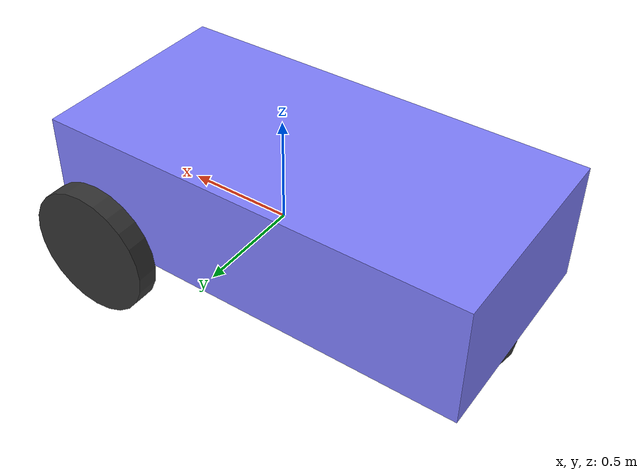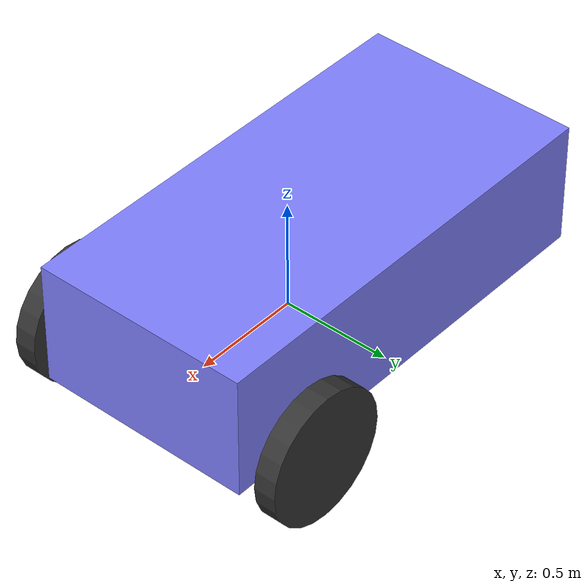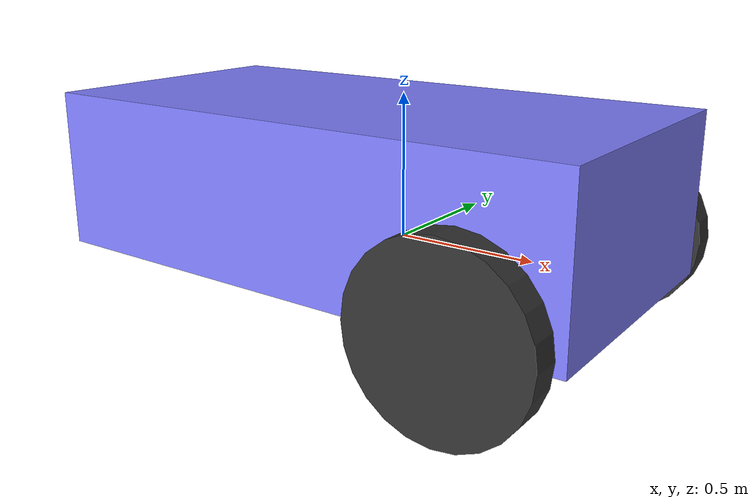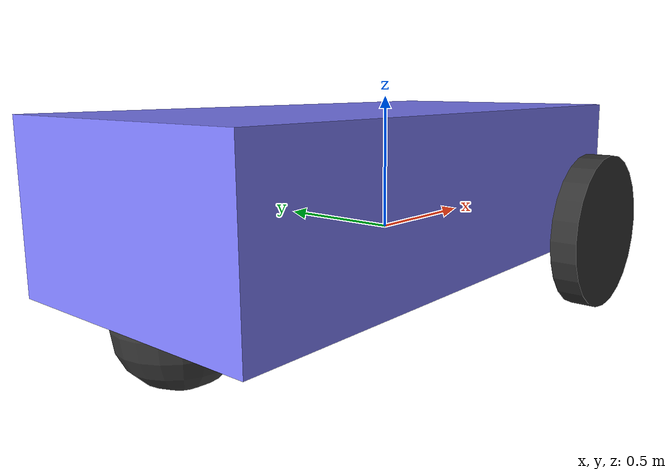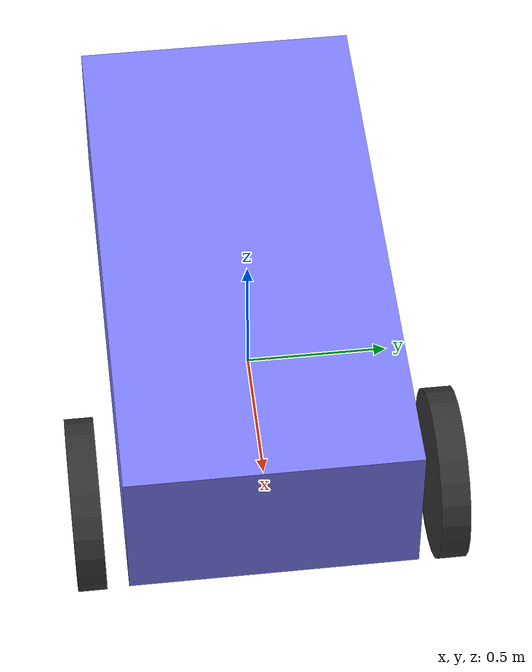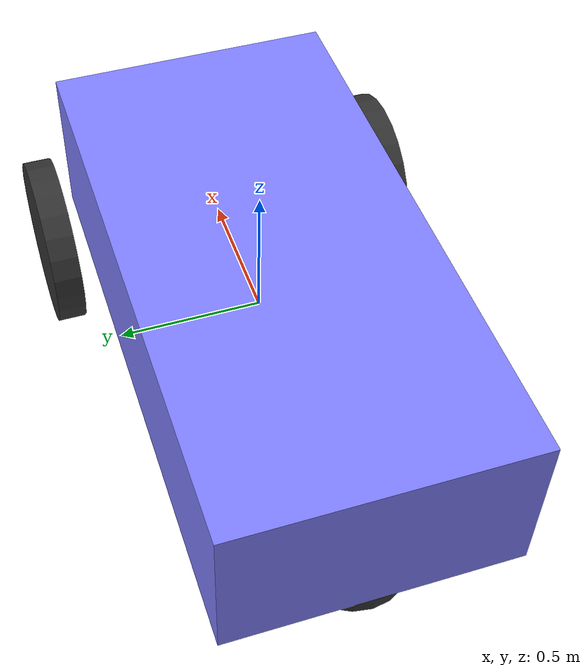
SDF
<?xml version="1.0" ?>
<sdf version="1.8">
    <model name='vehicle'>
      <static>false</static>
      <link name='chassis'>
        <pose>-0.151427 -0 0.175 0 -0 0</pose>
        <inertial>
          <mass>1.14395</mass>
          <inertia>
            <ixx>0.126164</ixx>
            <ixy>0</ixy>
            <ixz>0</ixz>
            <iyy>0.416519</iyy>
            <iyz>0</iyz>
            <izz>0.481014</izz>
          </inertia>
        </inertial>
        <visual name='visual_chassis'>
          <geometry>
            <box>
              <size>2.01142 1 0.568726</size>
            </box>
          </geometry>
          <material>
            <ambient>0.5 0.5 1.0 1</ambient>
            <diffuse>0.5 0.5 1.0 1</diffuse>
            <specular>0.0 0.0 1.0 1</specular>
          </material>
        </visual>
        <collision name='collision_chassis'>
          <geometry>
            <box>
              <size>2.01142 1 0.568726</size>
            </box>
          </geometry>
        </collision>
      </link>

      <link name='left_wheel'>
        <!-- Roll -90deg aby oś cylindra (domyślnie Z) stała się osią Y -->
        <pose>0.554283 0.625029 -0.025 -1.5708 0 0</pose>
        <inertial>
          <mass>2</mass>
          <inertia>
            <ixx>0.145833</ixx>
            <ixy>0</ixy>
            <ixz>0</ixz>
            <iyy>0.145833</iyy>
            <iyz>0</iyz>
            <izz>0.125</izz>
          </inertia>
        </inertial>
        <visual name='visual_left_wheel'>
          <geometry>
            <cylinder>
              <radius>0.3</radius>
              <length>0.1</length>
            </cylinder>
          </geometry>
          <material>
            <ambient>0.2 0.2 0.2 1</ambient>
            <diffuse>0.2 0.2 0.2 1</diffuse>
            <specular>0.2 0.2 0.2 1</specular>
          </material>
        </visual>
        <collision name='collision_left_wheel'>
          <geometry>
            <cylinder>
              <radius>0.3</radius>
              <length>0.1</length>
            </cylinder>
          </geometry>
        </collision>
      </link>

      <link name='right_wheel'>
        <pose>0.554282 -0.625029 -0.025 -1.5708 0 0</pose>
        <inertial>
          <mass>2</mass>
          <inertia>
            <ixx>0.145833</ixx>
            <ixy>0</ixy>
            <ixz>0</ixz>
            <iyy>0.145833</iyy>
            <iyz>0</iyz>
            <izz>0.125</izz>
          </inertia>
        </inertial>
        <visual name='visual_right_wheel'>
          <geometry>
            <cylinder>
              <radius>0.3</radius>
              <length>0.1</length>
            </cylinder>
          </geometry>
          <material>
            <ambient>0.2 0.2 0.2 1</ambient>
            <diffuse>0.2 0.2 0.2 1</diffuse>
            <specular>0.2 0.2 0.2 1</specular>
          </material>
        </visual>
        <collision name='collision_right_wheel'>
          <geometry>
            <cylinder>
              <radius>0.3</radius>
              <length>0.1</length>
            </cylinder>
          </geometry>
        </collision>
      </link>

      <link name='caster'>
        <pose>-0.957138 -0 -0.125 0 -0 0</pose>
        <inertial>
          <mass>1</mass>
          <inertia>
            <ixx>0.1</ixx>
            <ixy>0</ixy>
            <ixz>0</ixz>
            <iyy>0.1</iyy>
            <iyz>0</iyz>
            <izz>0.1</izz>
          </inertia>
        </inertial>
        <visual name='visual_caster'>
          <geometry>
            <sphere>
              <radius>0.2</radius>
            </sphere>
          </geometry>
          <material>
            <ambient>0.2 0.2 0.2 1</ambient>
            <diffuse>0.2 0.2 0.2 1</diffuse>
            <specular>0.2 0.2 0.2 1</specular>
          </material>
        </visual>
        <collision name='collision_caster'>
          <geometry>
            <sphere>
              <radius>0.2</radius>
            </sphere>
          </geometry>
        </collision>
      </link>

      <joint name='left_wheel_joint' type='revolute'>
        <parent>chassis</parent>
        <child>left_wheel</child>
        <axis>
          <!-- Obrót koła wokół osi Y -->
          <xyz>0 1 0</xyz>
          <limit>
            <lower>-1.79769e+308</lower>
            <upper>1.79769e+308</upper>
          </limit>
        </axis>
      </joint>

      <joint name='right_wheel_joint' type='revolute'>
        <parent>chassis</parent>
        <child>right_wheel</child>
        <axis>
          <xyz>0 1 0</xyz>
          <limit>
            <lower>-1.79769e+308</lower>
            <upper>1.79769e+308</upper>
          </limit>
        </axis>
      </joint>

      <joint name='caster_wheel' type='ball'>
        <parent>chassis</parent>
        <child>caster</child>
      </joint>

      <plugin filename="ignition-gazebo-diff-drive-system" name="ignition::gazebo::systems::DiffDrive">
        <left_joint>left_wheel_joint</left_joint>
        <right_joint>right_wheel_joint</right_joint>
        <wheel_separation>1.25</wheel_separation>
        <wheel_radius>0.3</wheel_radius>
        <odom_publish_frequency>10</odom_publish_frequency>
        <odom_frame>odom</odom_frame>
        <base_frame>base_link</base_frame>
        <max_linear_acceleration>1</max_linear_acceleration>
        <min_linear_acceleration>-1</min_linear_acceleration>
        <max_angular_acceleration>2</max_angular_acceleration>
        <min_angular_acceleration>-2</min_angular_acceleration>
        <max_linear_velocity>0.5</max_linear_velocity>
        <min_linear_velocity>-0.5</min_linear_velocity>
        <max_angular_velocity>1</max_angular_velocity>
        <min_angular_velocity>-1</min_angular_velocity>
        <topic>cmd_vel</topic>
        <odom_topic>odom</odom_topic>
      </plugin>

    </model>
</sdf>
